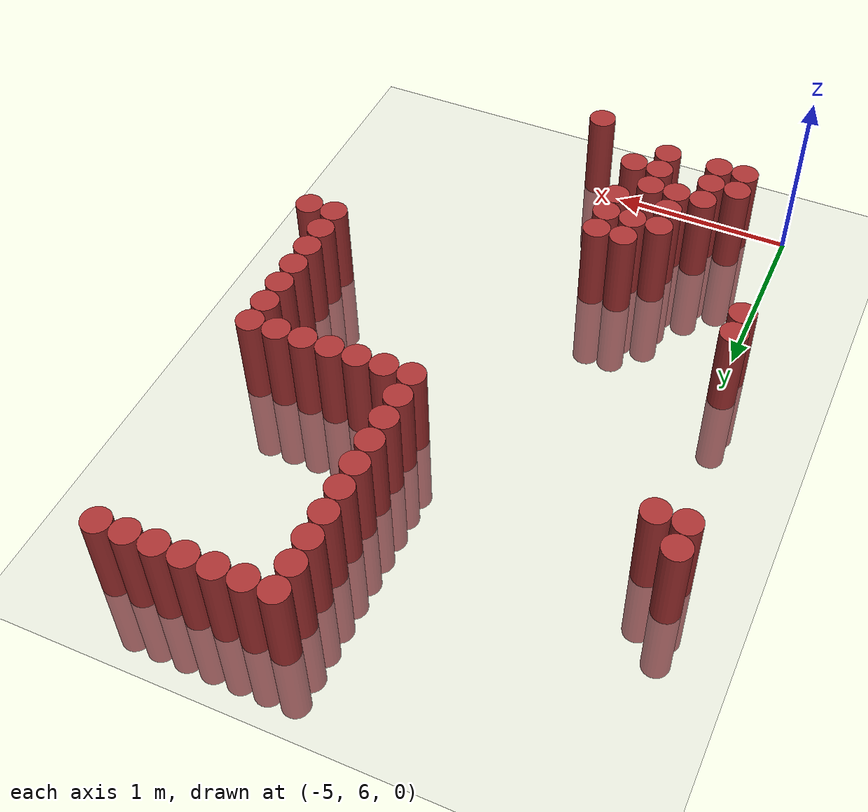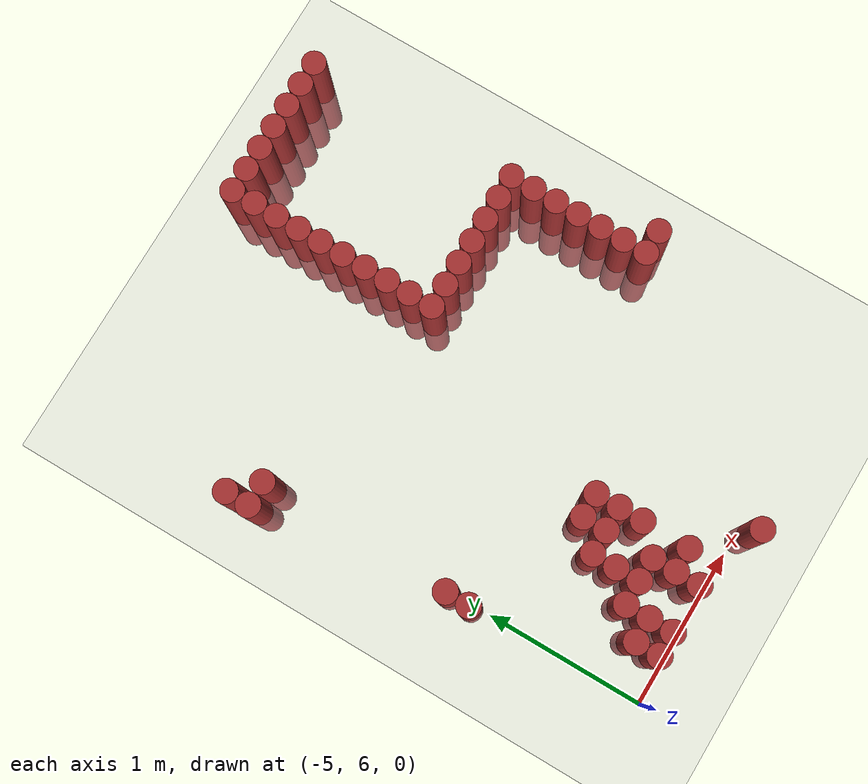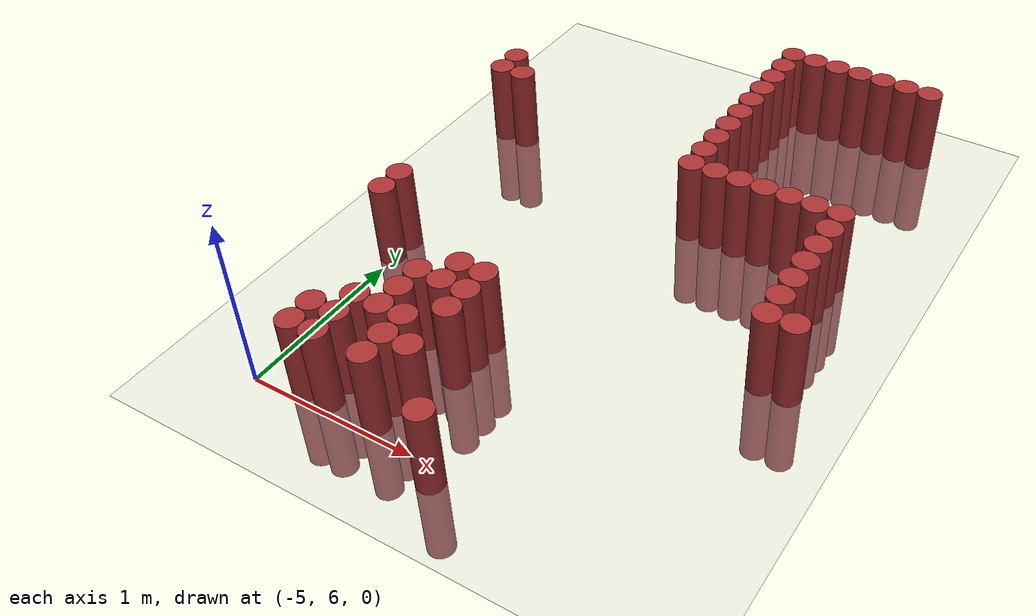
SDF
<sdf version="1.6">
 <world name="default">
  <model name="ground_plane">
   <static>1</static>
   <link name="link">
    <collision name="collision">
     <geometry><plane><normal>0 0 1</normal><size>100 100</size></plane></geometry>
     <surface><friction><ode><mu>100</mu><mu2>50</mu2></ode></friction></surface>
    </collision>
    <visual name="visual">
     <cast_shadows>0</cast_shadows>
     <geometry><plane><normal>0 0 1</normal><size>100 100</size></plane></geometry>
     <material>
      <script><uri>file://media/materials/scripts/gazebo.material</uri><name>Gazebo/Grey</name></script>
     </material>
    </visual>
   </link>
  </model>
  <model name="unit_cylinder_268">
   <static>1</static>
   <pose>-5.175000 8.475000 0.000000 0.000000 0.000000 0.000000</pose>
   <link name="link">
    <inertial>
     <mass>1</mass>
     <inertia><ixx>0.145833</ixx><ixy>0</ixy><ixz>0</ixz><iyy>0.145833</iyy><iyz>0</iyz><izz>0.125</izz></inertia>
    </inertial>
    <collision name="collision">
     <geometry><cylinder><radius>0.075000</radius><length>1</length></cylinder></geometry>
    </collision>
    <visual name="visual">
     <geometry><cylinder><radius>0.075000</radius><length>1</length></cylinder></geometry>
     <material>
      <ambient>0.648000 0.192000 0.192000 1</ambient>
      <diffuse>0.648000 0.192000 0.192000 1</diffuse>
     </material>
     <material>
      <script><name>Gazebo/Grey</name><uri>file://media/materials/scripts/gazebo.material</uri></script>
     </material>
    </visual>
   </link>
  </model>
  <model name="unit_cylinder_269">
   <static>1</static>
   <pose>-5.175000 8.625000 0.000000 0.000000 0.000000 0.000000</pose>
   <link name="link">
    <inertial>
     <mass>1</mass>
     <inertia><ixx>0.145833</ixx><ixy>0</ixy><ixz>0</ixz><iyy>0.145833</iyy><iyz>0</iyz><izz>0.125</izz></inertia>
    </inertial>
    <collision name="collision">
     <geometry><cylinder><radius>0.075000</radius><length>1</length></cylinder></geometry>
    </collision>
    <visual name="visual">
     <geometry><cylinder><radius>0.075000</radius><length>1</length></cylinder></geometry>
     <material>
      <ambient>0.648000 0.192000 0.192000 1</ambient>
      <diffuse>0.648000 0.192000 0.192000 1</diffuse>
     </material>
     <material>
      <script><name>Gazebo/Grey</name><uri>file://media/materials/scripts/gazebo.material</uri></script>
     </material>
    </visual>
   </link>
  </model>
  <model name="unit_cylinder_270">
   <static>1</static>
   <pose>-5.025000 7.125000 0.000000 0.000000 0.000000 0.000000</pose>
   <link name="link">
    <inertial>
     <mass>1</mass>
     <inertia><ixx>0.145833</ixx><ixy>0</ixy><ixz>0</ixz><iyy>0.145833</iyy><iyz>0</iyz><izz>0.125</izz></inertia>
    </inertial>
    <collision name="collision">
     <geometry><cylinder><radius>0.075000</radius><length>1</length></cylinder></geometry>
    </collision>
    <visual name="visual">
     <geometry><cylinder><radius>0.075000</radius><length>1</length></cylinder></geometry>
     <material>
      <ambient>0.648000 0.192000 0.192000 1</ambient>
      <diffuse>0.648000 0.192000 0.192000 1</diffuse>
     </material>
     <material>
      <script><name>Gazebo/Grey</name><uri>file://media/materials/scripts/gazebo.material</uri></script>
     </material>
    </visual>
   </link>
  </model>
  <model name="unit_cylinder_271">
   <static>1</static>
   <pose>-5.025000 7.275000 0.000000 0.000000 0.000000 0.000000</pose>
   <link name="link">
    <inertial>
     <mass>1</mass>
     <inertia><ixx>0.145833</ixx><ixy>0</ixy><ixz>0</ixz><iyy>0.145833</iyy><iyz>0</iyz><izz>0.125</izz></inertia>
    </inertial>
    <collision name="collision">
     <geometry><cylinder><radius>0.075000</radius><length>1</length></cylinder></geometry>
    </collision>
    <visual name="visual">
     <geometry><cylinder><radius>0.075000</radius><length>1</length></cylinder></geometry>
     <material>
      <ambient>0.648000 0.192000 0.192000 1</ambient>
      <diffuse>0.648000 0.192000 0.192000 1</diffuse>
     </material>
     <material>
      <script><name>Gazebo/Grey</name><uri>file://media/materials/scripts/gazebo.material</uri></script>
     </material>
    </visual>
   </link>
  </model>
  <model name="unit_cylinder_272">
   <static>1</static>
   <pose>-5.025000 8.475000 0.000000 0.000000 0.000000 0.000000</pose>
   <link name="link">
    <inertial>
     <mass>1</mass>
     <inertia><ixx>0.145833</ixx><ixy>0</ixy><ixz>0</ixz><iyy>0.145833</iyy><iyz>0</iyz><izz>0.125</izz></inertia>
    </inertial>
    <collision name="collision">
     <geometry><cylinder><radius>0.075000</radius><length>1</length></cylinder></geometry>
    </collision>
    <visual name="visual">
     <geometry><cylinder><radius>0.075000</radius><length>1</length></cylinder></geometry>
     <material>
      <ambient>0.648000 0.192000 0.192000 1</ambient>
      <diffuse>0.648000 0.192000 0.192000 1</diffuse>
     </material>
     <material>
      <script><name>Gazebo/Grey</name><uri>file://media/materials/scripts/gazebo.material</uri></script>
     </material>
    </visual>
   </link>
  </model>
  <model name="unit_cylinder_273">
   <static>1</static>
   <pose>-4.725000 6.075000 0.000000 0.000000 0.000000 0.000000</pose>
   <link name="link">
    <inertial>
     <mass>1</mass>
     <inertia><ixx>0.145833</ixx><ixy>0</ixy><ixz>0</ixz><iyy>0.145833</iyy><iyz>0</iyz><izz>0.125</izz></inertia>
    </inertial>
    <collision name="collision">
     <geometry><cylinder><radius>0.075000</radius><length>1</length></cylinder></geometry>
    </collision>
    <visual name="visual">
     <geometry><cylinder><radius>0.075000</radius><length>1</length></cylinder></geometry>
     <material>
      <ambient>0.648000 0.192000 0.192000 1</ambient>
      <diffuse>0.648000 0.192000 0.192000 1</diffuse>
     </material>
     <material>
      <script><name>Gazebo/Grey</name><uri>file://media/materials/scripts/gazebo.material</uri></script>
     </material>
    </visual>
   </link>
  </model>
  <model name="unit_cylinder_274">
   <static>1</static>
   <pose>-4.725000 6.225000 0.000000 0.000000 0.000000 0.000000</pose>
   <link name="link">
    <inertial>
     <mass>1</mass>
     <inertia><ixx>0.145833</ixx><ixy>0</ixy><ixz>0</ixz><iyy>0.145833</iyy><iyz>0</iyz><izz>0.125</izz></inertia>
    </inertial>
    <collision name="collision">
     <geometry><cylinder><radius>0.075000</radius><length>1</length></cylinder></geometry>
    </collision>
    <visual name="visual">
     <geometry><cylinder><radius>0.075000</radius><length>1</length></cylinder></geometry>
     <material>
      <ambient>0.648000 0.192000 0.192000 1</ambient>
      <diffuse>0.648000 0.192000 0.192000 1</diffuse>
     </material>
     <material>
      <script><name>Gazebo/Grey</name><uri>file://media/materials/scripts/gazebo.material</uri></script>
     </material>
    </visual>
   </link>
  </model>
  <model name="unit_cylinder_278">
   <static>1</static>
   <pose>-4.575000 6.075000 0.000000 0.000000 0.000000 0.000000</pose>
   <link name="link">
    <inertial>
     <mass>1</mass>
     <inertia><ixx>0.145833</ixx><ixy>0</ixy><ixz>0</ixz><iyy>0.145833</iyy><iyz>0</iyz><izz>0.125</izz></inertia>
    </inertial>
    <collision name="collision">
     <geometry><cylinder><radius>0.075000</radius><length>1</length></cylinder></geometry>
    </collision>
    <visual name="visual">
     <geometry><cylinder><radius>0.075000</radius><length>1</length></cylinder></geometry>
     <material>
      <ambient>0.648000 0.192000 0.192000 1</ambient>
      <diffuse>0.648000 0.192000 0.192000 1</diffuse>
     </material>
     <material>
      <script><name>Gazebo/Grey</name><uri>file://media/materials/scripts/gazebo.material</uri></script>
     </material>
    </visual>
   </link>
  </model>
  <model name="unit_cylinder_279">
   <static>1</static>
   <pose>-4.575000 6.225000 0.000000 0.000000 0.000000 0.000000</pose>
   <link name="link">
    <inertial>
     <mass>1</mass>
     <inertia><ixx>0.145833</ixx><ixy>0</ixy><ixz>0</ixz><iyy>0.145833</iyy><iyz>0</iyz><izz>0.125</izz></inertia>
    </inertial>
    <collision name="collision">
     <geometry><cylinder><radius>0.075000</radius><length>1</length></cylinder></geometry>
    </collision>
    <visual name="visual">
     <geometry><cylinder><radius>0.075000</radius><length>1</length></cylinder></geometry>
     <material>
      <ambient>0.648000 0.192000 0.192000 1</ambient>
      <diffuse>0.648000 0.192000 0.192000 1</diffuse>
     </material>
     <material>
      <script><name>Gazebo/Grey</name><uri>file://media/materials/scripts/gazebo.material</uri></script>
     </material>
    </visual>
   </link>
  </model>
  <model name="unit_cylinder_280">
   <static>1</static>
   <pose>-4.575000 6.375000 0.000000 0.000000 0.000000 0.000000</pose>
   <link name="link">
    <inertial>
     <mass>1</mass>
     <inertia><ixx>0.145833</ixx><ixy>0</ixy><ixz>0</ixz><iyy>0.145833</iyy><iyz>0</iyz><izz>0.125</izz></inertia>
    </inertial>
    <collision name="collision">
     <geometry><cylinder><radius>0.075000</radius><length>1</length></cylinder></geometry>
    </collision>
    <visual name="visual">
     <geometry><cylinder><radius>0.075000</radius><length>1</length></cylinder></geometry>
     <material>
      <ambient>0.648000 0.192000 0.192000 1</ambient>
      <diffuse>0.648000 0.192000 0.192000 1</diffuse>
     </material>
     <material>
      <script><name>Gazebo/Grey</name><uri>file://media/materials/scripts/gazebo.material</uri></script>
     </material>
    </visual>
   </link>
  </model>
  <model name="unit_cylinder_287">
   <static>1</static>
   <pose>-4.425000 6.375000 0.000000 0.000000 0.000000 0.000000</pose>
   <link name="link">
    <inertial>
     <mass>1</mass>
     <inertia><ixx>0.145833</ixx><ixy>0</ixy><ixz>0</ixz><iyy>0.145833</iyy><iyz>0</iyz><izz>0.125</izz></inertia>
    </inertial>
    <collision name="collision">
     <geometry><cylinder><radius>0.075000</radius><length>1</length></cylinder></geometry>
    </collision>
    <visual name="visual">
     <geometry><cylinder><radius>0.075000</radius><length>1</length></cylinder></geometry>
     <material>
      <ambient>0.648000 0.192000 0.192000 1</ambient>
      <diffuse>0.648000 0.192000 0.192000 1</diffuse>
     </material>
     <material>
      <script><name>Gazebo/Grey</name><uri>file://media/materials/scripts/gazebo.material</uri></script>
     </material>
    </visual>
   </link>
  </model>
  <model name="unit_cylinder_288">
   <static>1</static>
   <pose>-4.425000 6.525000 0.000000 0.000000 0.000000 0.000000</pose>
   <link name="link">
    <inertial>
     <mass>1</mass>
     <inertia><ixx>0.145833</ixx><ixy>0</ixy><ixz>0</ixz><iyy>0.145833</iyy><iyz>0</iyz><izz>0.125</izz></inertia>
    </inertial>
    <collision name="collision">
     <geometry><cylinder><radius>0.075000</radius><length>1</length></cylinder></geometry>
    </collision>
    <visual name="visual">
     <geometry><cylinder><radius>0.075000</radius><length>1</length></cylinder></geometry>
     <material>
      <ambient>0.648000 0.192000 0.192000 1</ambient>
      <diffuse>0.648000 0.192000 0.192000 1</diffuse>
     </material>
     <material>
      <script><name>Gazebo/Grey</name><uri>file://media/materials/scripts/gazebo.material</uri></script>
     </material>
    </visual>
   </link>
  </model>
  <model name="unit_cylinder_289">
   <static>1</static>
   <pose>-4.425000 6.675000 0.000000 0.000000 0.000000 0.000000</pose>
   <link name="link">
    <inertial>
     <mass>1</mass>
     <inertia><ixx>0.145833</ixx><ixy>0</ixy><ixz>0</ixz><iyy>0.145833</iyy><iyz>0</iyz><izz>0.125</izz></inertia>
    </inertial>
    <collision name="collision">
     <geometry><cylinder><radius>0.075000</radius><length>1</length></cylinder></geometry>
    </collision>
    <visual name="visual">
     <geometry><cylinder><radius>0.075000</radius><length>1</length></cylinder></geometry>
     <material>
      <ambient>0.648000 0.192000 0.192000 1</ambient>
      <diffuse>0.648000 0.192000 0.192000 1</diffuse>
     </material>
     <material>
      <script><name>Gazebo/Grey</name><uri>file://media/materials/scripts/gazebo.material</uri></script>
     </material>
    </visual>
   </link>
  </model>
  <model name="unit_cylinder_292">
   <static>1</static>
   <pose>-4.275000 6.075000 0.000000 0.000000 0.000000 0.000000</pose>
   <link name="link">
    <inertial>
     <mass>1</mass>
     <inertia><ixx>0.145833</ixx><ixy>0</ixy><ixz>0</ixz><iyy>0.145833</iyy><iyz>0</iyz><izz>0.125</izz></inertia>
    </inertial>
    <collision name="collision">
     <geometry><cylinder><radius>0.075000</radius><length>1</length></cylinder></geometry>
    </collision>
    <visual name="visual">
     <geometry><cylinder><radius>0.075000</radius><length>1</length></cylinder></geometry>
     <material>
      <ambient>0.648000 0.192000 0.192000 1</ambient>
      <diffuse>0.648000 0.192000 0.192000 1</diffuse>
     </material>
     <material>
      <script><name>Gazebo/Grey</name><uri>file://media/materials/scripts/gazebo.material</uri></script>
     </material>
    </visual>
   </link>
  </model>
  <model name="unit_cylinder_293">
   <static>1</static>
   <pose>-4.275000 6.225000 0.000000 0.000000 0.000000 0.000000</pose>
   <link name="link">
    <inertial>
     <mass>1</mass>
     <inertia><ixx>0.145833</ixx><ixy>0</ixy><ixz>0</ixz><iyy>0.145833</iyy><iyz>0</iyz><izz>0.125</izz></inertia>
    </inertial>
    <collision name="collision">
     <geometry><cylinder><radius>0.075000</radius><length>1</length></cylinder></geometry>
    </collision>
    <visual name="visual">
     <geometry><cylinder><radius>0.075000</radius><length>1</length></cylinder></geometry>
     <material>
      <ambient>0.648000 0.192000 0.192000 1</ambient>
      <diffuse>0.648000 0.192000 0.192000 1</diffuse>
     </material>
     <material>
      <script><name>Gazebo/Grey</name><uri>file://media/materials/scripts/gazebo.material</uri></script>
     </material>
    </visual>
   </link>
  </model>
  <model name="unit_cylinder_294">
   <static>1</static>
   <pose>-4.275000 6.375000 0.000000 0.000000 0.000000 0.000000</pose>
   <link name="link">
    <inertial>
     <mass>1</mass>
     <inertia><ixx>0.145833</ixx><ixy>0</ixy><ixz>0</ixz><iyy>0.145833</iyy><iyz>0</iyz><izz>0.125</izz></inertia>
    </inertial>
    <collision name="collision">
     <geometry><cylinder><radius>0.075000</radius><length>1</length></cylinder></geometry>
    </collision>
    <visual name="visual">
     <geometry><cylinder><radius>0.075000</radius><length>1</length></cylinder></geometry>
     <material>
      <ambient>0.648000 0.192000 0.192000 1</ambient>
      <diffuse>0.648000 0.192000 0.192000 1</diffuse>
     </material>
     <material>
      <script><name>Gazebo/Grey</name><uri>file://media/materials/scripts/gazebo.material</uri></script>
     </material>
    </visual>
   </link>
  </model>
  <model name="unit_cylinder_295">
   <static>1</static>
   <pose>-4.275000 6.675000 0.000000 0.000000 0.000000 0.000000</pose>
   <link name="link">
    <inertial>
     <mass>1</mass>
     <inertia><ixx>0.145833</ixx><ixy>0</ixy><ixz>0</ixz><iyy>0.145833</iyy><iyz>0</iyz><izz>0.125</izz></inertia>
    </inertial>
    <collision name="collision">
     <geometry><cylinder><radius>0.075000</radius><length>1</length></cylinder></geometry>
    </collision>
    <visual name="visual">
     <geometry><cylinder><radius>0.075000</radius><length>1</length></cylinder></geometry>
     <material>
      <ambient>0.648000 0.192000 0.192000 1</ambient>
      <diffuse>0.648000 0.192000 0.192000 1</diffuse>
     </material>
     <material>
      <script><name>Gazebo/Grey</name><uri>file://media/materials/scripts/gazebo.material</uri></script>
     </material>
    </visual>
   </link>
  </model>
  <model name="unit_cylinder_296">
   <static>1</static>
   <pose>-4.275000 6.825000 0.000000 0.000000 0.000000 0.000000</pose>
   <link name="link">
    <inertial>
     <mass>1</mass>
     <inertia><ixx>0.145833</ixx><ixy>0</ixy><ixz>0</ixz><iyy>0.145833</iyy><iyz>0</iyz><izz>0.125</izz></inertia>
    </inertial>
    <collision name="collision">
     <geometry><cylinder><radius>0.075000</radius><length>1</length></cylinder></geometry>
    </collision>
    <visual name="visual">
     <geometry><cylinder><radius>0.075000</radius><length>1</length></cylinder></geometry>
     <material>
      <ambient>0.648000 0.192000 0.192000 1</ambient>
      <diffuse>0.648000 0.192000 0.192000 1</diffuse>
     </material>
     <material>
      <script><name>Gazebo/Grey</name><uri>file://media/materials/scripts/gazebo.material</uri></script>
     </material>
    </visual>
   </link>
  </model>
  <model name="unit_cylinder_301">
   <static>1</static>
   <pose>-4.125000 6.225000 0.000000 0.000000 0.000000 0.000000</pose>
   <link name="link">
    <inertial>
     <mass>1</mass>
     <inertia><ixx>0.145833</ixx><ixy>0</ixy><ixz>0</ixz><iyy>0.145833</iyy><iyz>0</iyz><izz>0.125</izz></inertia>
    </inertial>
    <collision name="collision">
     <geometry><cylinder><radius>0.075000</radius><length>1</length></cylinder></geometry>
    </collision>
    <visual name="visual">
     <geometry><cylinder><radius>0.075000</radius><length>1</length></cylinder></geometry>
     <material>
      <ambient>0.648000 0.192000 0.192000 1</ambient>
      <diffuse>0.648000 0.192000 0.192000 1</diffuse>
     </material>
     <material>
      <script><name>Gazebo/Grey</name><uri>file://media/materials/scripts/gazebo.material</uri></script>
     </material>
    </visual>
   </link>
  </model>
  <model name="unit_cylinder_302">
   <static>1</static>
   <pose>-4.125000 6.525000 0.000000 0.000000 0.000000 0.000000</pose>
   <link name="link">
    <inertial>
     <mass>1</mass>
     <inertia><ixx>0.145833</ixx><ixy>0</ixy><ixz>0</ixz><iyy>0.145833</iyy><iyz>0</iyz><izz>0.125</izz></inertia>
    </inertial>
    <collision name="collision">
     <geometry><cylinder><radius>0.075000</radius><length>1</length></cylinder></geometry>
    </collision>
    <visual name="visual">
     <geometry><cylinder><radius>0.075000</radius><length>1</length></cylinder></geometry>
     <material>
      <ambient>0.648000 0.192000 0.192000 1</ambient>
      <diffuse>0.648000 0.192000 0.192000 1</diffuse>
     </material>
     <material>
      <script><name>Gazebo/Grey</name><uri>file://media/materials/scripts/gazebo.material</uri></script>
     </material>
    </visual>
   </link>
  </model>
  <model name="unit_cylinder_303">
   <static>1</static>
   <pose>-4.125000 6.675000 0.000000 0.000000 0.000000 0.000000</pose>
   <link name="link">
    <inertial>
     <mass>1</mass>
     <inertia><ixx>0.145833</ixx><ixy>0</ixy><ixz>0</ixz><iyy>0.145833</iyy><iyz>0</iyz><izz>0.125</izz></inertia>
    </inertial>
    <collision name="collision">
     <geometry><cylinder><radius>0.075000</radius><length>1</length></cylinder></geometry>
    </collision>
    <visual name="visual">
     <geometry><cylinder><radius>0.075000</radius><length>1</length></cylinder></geometry>
     <material>
      <ambient>0.648000 0.192000 0.192000 1</ambient>
      <diffuse>0.648000 0.192000 0.192000 1</diffuse>
     </material>
     <material>
      <script><name>Gazebo/Grey</name><uri>file://media/materials/scripts/gazebo.material</uri></script>
     </material>
    </visual>
   </link>
  </model>
  <model name="unit_cylinder_304">
   <static>1</static>
   <pose>-4.125000 6.825000 0.000000 0.000000 0.000000 0.000000</pose>
   <link name="link">
    <inertial>
     <mass>1</mass>
     <inertia><ixx>0.145833</ixx><ixy>0</ixy><ixz>0</ixz><iyy>0.145833</iyy><iyz>0</iyz><izz>0.125</izz></inertia>
    </inertial>
    <collision name="collision">
     <geometry><cylinder><radius>0.075000</radius><length>1</length></cylinder></geometry>
    </collision>
    <visual name="visual">
     <geometry><cylinder><radius>0.075000</radius><length>1</length></cylinder></geometry>
     <material>
      <ambient>0.648000 0.192000 0.192000 1</ambient>
      <diffuse>0.648000 0.192000 0.192000 1</diffuse>
     </material>
     <material>
      <script><name>Gazebo/Grey</name><uri>file://media/materials/scripts/gazebo.material</uri></script>
     </material>
    </visual>
   </link>
  </model>
  <model name="unit_cylinder_311">
   <static>1</static>
   <pose>-3.825000 5.925000 0.000000 0.000000 0.000000 0.000000</pose>
   <link name="link">
    <inertial>
     <mass>1</mass>
     <inertia><ixx>0.145833</ixx><ixy>0</ixy><ixz>0</ixz><iyy>0.145833</iyy><iyz>0</iyz><izz>0.125</izz></inertia>
    </inertial>
    <collision name="collision">
     <geometry><cylinder><radius>0.075000</radius><length>1</length></cylinder></geometry>
    </collision>
    <visual name="visual">
     <geometry><cylinder><radius>0.075000</radius><length>1</length></cylinder></geometry>
     <material>
      <ambient>0.648000 0.192000 0.192000 1</ambient>
      <diffuse>0.648000 0.192000 0.192000 1</diffuse>
     </material>
     <material>
      <script><name>Gazebo/Grey</name><uri>file://media/materials/scripts/gazebo.material</uri></script>
     </material>
    </visual>
   </link>
  </model>
  <model name="unit_cylinder_314">
   <static>1</static>
   <pose>-3.675000 8.175000 0.000000 0.000000 0.000000 0.000000</pose>
   <link name="link">
    <inertial>
     <mass>1</mass>
     <inertia><ixx>0.145833</ixx><ixy>0</ixy><ixz>0</ixz><iyy>0.145833</iyy><iyz>0</iyz><izz>0.125</izz></inertia>
    </inertial>
    <collision name="collision">
     <geometry><cylinder><radius>0.075000</radius><length>1</length></cylinder></geometry>
    </collision>
    <visual name="visual">
     <geometry><cylinder><radius>0.075000</radius><length>1</length></cylinder></geometry>
     <material>
      <ambient>0.648000 0.192000 0.192000 1</ambient>
      <diffuse>0.648000 0.192000 0.192000 1</diffuse>
     </material>
     <material>
      <script><name>Gazebo/Grey</name><uri>file://media/materials/scripts/gazebo.material</uri></script>
     </material>
    </visual>
   </link>
  </model>
  <model name="unit_cylinder_315">
   <static>1</static>
   <pose>-3.675000 8.325000 0.000000 0.000000 0.000000 0.000000</pose>
   <link name="link">
    <inertial>
     <mass>1</mass>
     <inertia><ixx>0.145833</ixx><ixy>0</ixy><ixz>0</ixz><iyy>0.145833</iyy><iyz>0</iyz><izz>0.125</izz></inertia>
    </inertial>
    <collision name="collision">
     <geometry><cylinder><radius>0.075000</radius><length>1</length></cylinder></geometry>
    </collision>
    <visual name="visual">
     <geometry><cylinder><radius>0.075000</radius><length>1</length></cylinder></geometry>
     <material>
      <ambient>0.648000 0.192000 0.192000 1</ambient>
      <diffuse>0.648000 0.192000 0.192000 1</diffuse>
     </material>
     <material>
      <script><name>Gazebo/Grey</name><uri>file://media/materials/scripts/gazebo.material</uri></script>
     </material>
    </visual>
   </link>
  </model>
  <model name="unit_cylinder_316">
   <static>1</static>
   <pose>-3.675000 8.475000 0.000000 0.000000 0.000000 0.000000</pose>
   <link name="link">
    <inertial>
     <mass>1</mass>
     <inertia><ixx>0.145833</ixx><ixy>0</ixy><ixz>0</ixz><iyy>0.145833</iyy><iyz>0</iyz><izz>0.125</izz></inertia>
    </inertial>
    <collision name="collision">
     <geometry><cylinder><radius>0.075000</radius><length>1</length></cylinder></geometry>
    </collision>
    <visual name="visual">
     <geometry><cylinder><radius>0.075000</radius><length>1</length></cylinder></geometry>
     <material>
      <ambient>0.648000 0.192000 0.192000 1</ambient>
      <diffuse>0.648000 0.192000 0.192000 1</diffuse>
     </material>
     <material>
      <script><name>Gazebo/Grey</name><uri>file://media/materials/scripts/gazebo.material</uri></script>
     </material>
    </visual>
   </link>
  </model>
  <model name="unit_cylinder_317">
   <static>1</static>
   <pose>-3.675000 8.625000 0.000000 0.000000 0.000000 0.000000</pose>
   <link name="link">
    <inertial>
     <mass>1</mass>
     <inertia><ixx>0.145833</ixx><ixy>0</ixy><ixz>0</ixz><iyy>0.145833</iyy><iyz>0</iyz><izz>0.125</izz></inertia>
    </inertial>
    <collision name="collision">
     <geometry><cylinder><radius>0.075000</radius><length>1</length></cylinder></geometry>
    </collision>
    <visual name="visual">
     <geometry><cylinder><radius>0.075000</radius><length>1</length></cylinder></geometry>
     <material>
      <ambient>0.648000 0.192000 0.192000 1</ambient>
      <diffuse>0.648000 0.192000 0.192000 1</diffuse>
     </material>
     <material>
      <script><name>Gazebo/Grey</name><uri>file://media/materials/scripts/gazebo.material</uri></script>
     </material>
    </visual>
   </link>
  </model>
  <model name="unit_cylinder_318">
   <static>1</static>
   <pose>-3.675000 8.775000 0.000000 0.000000 0.000000 0.000000</pose>
   <link name="link">
    <inertial>
     <mass>1</mass>
     <inertia><ixx>0.145833</ixx><ixy>0</ixy><ixz>0</ixz><iyy>0.145833</iyy><iyz>0</iyz><izz>0.125</izz></inertia>
    </inertial>
    <collision name="collision">
     <geometry><cylinder><radius>0.075000</radius><length>1</length></cylinder></geometry>
    </collision>
    <visual name="visual">
     <geometry><cylinder><radius>0.075000</radius><length>1</length></cylinder></geometry>
     <material>
      <ambient>0.648000 0.192000 0.192000 1</ambient>
      <diffuse>0.648000 0.192000 0.192000 1</diffuse>
     </material>
     <material>
      <script><name>Gazebo/Grey</name><uri>file://media/materials/scripts/gazebo.material</uri></script>
     </material>
    </visual>
   </link>
  </model>
  <model name="unit_cylinder_319">
   <static>1</static>
   <pose>-3.675000 8.925000 0.000000 0.000000 0.000000 0.000000</pose>
   <link name="link">
    <inertial>
     <mass>1</mass>
     <inertia><ixx>0.145833</ixx><ixy>0</ixy><ixz>0</ixz><iyy>0.145833</iyy><iyz>0</iyz><izz>0.125</izz></inertia>
    </inertial>
    <collision name="collision">
     <geometry><cylinder><radius>0.075000</radius><length>1</length></cylinder></geometry>
    </collision>
    <visual name="visual">
     <geometry><cylinder><radius>0.075000</radius><length>1</length></cylinder></geometry>
     <material>
      <ambient>0.648000 0.192000 0.192000 1</ambient>
      <diffuse>0.648000 0.192000 0.192000 1</diffuse>
     </material>
     <material>
      <script><name>Gazebo/Grey</name><uri>file://media/materials/scripts/gazebo.material</uri></script>
     </material>
    </visual>
   </link>
  </model>
  <model name="unit_cylinder_320">
   <static>1</static>
   <pose>-3.675000 9.075000 0.000000 0.000000 0.000000 0.000000</pose>
   <link name="link">
    <inertial>
     <mass>1</mass>
     <inertia><ixx>0.145833</ixx><ixy>0</ixy><ixz>0</ixz><iyy>0.145833</iyy><iyz>0</iyz><izz>0.125</izz></inertia>
    </inertial>
    <collision name="collision">
     <geometry><cylinder><radius>0.075000</radius><length>1</length></cylinder></geometry>
    </collision>
    <visual name="visual">
     <geometry><cylinder><radius>0.075000</radius><length>1</length></cylinder></geometry>
     <material>
      <ambient>0.648000 0.192000 0.192000 1</ambient>
      <diffuse>0.648000 0.192000 0.192000 1</diffuse>
     </material>
     <material>
      <script><name>Gazebo/Grey</name><uri>file://media/materials/scripts/gazebo.material</uri></script>
     </material>
    </visual>
   </link>
  </model>
  <model name="unit_cylinder_321">
   <static>1</static>
   <pose>-3.675000 9.225000 0.000000 0.000000 0.000000 0.000000</pose>
   <link name="link">
    <inertial>
     <mass>1</mass>
     <inertia><ixx>0.145833</ixx><ixy>0</ixy><ixz>0</ixz><iyy>0.145833</iyy><iyz>0</iyz><izz>0.125</izz></inertia>
    </inertial>
    <collision name="collision">
     <geometry><cylinder><radius>0.075000</radius><length>1</length></cylinder></geometry>
    </collision>
    <visual name="visual">
     <geometry><cylinder><radius>0.075000</radius><length>1</length></cylinder></geometry>
     <material>
      <ambient>0.648000 0.192000 0.192000 1</ambient>
      <diffuse>0.648000 0.192000 0.192000 1</diffuse>
     </material>
     <material>
      <script><name>Gazebo/Grey</name><uri>file://media/materials/scripts/gazebo.material</uri></script>
     </material>
    </visual>
   </link>
  </model>
  <model name="unit_cylinder_322">
   <static>1</static>
   <pose>-3.675000 9.375000 0.000000 0.000000 0.000000 0.000000</pose>
   <link name="link">
    <inertial>
     <mass>1</mass>
     <inertia><ixx>0.145833</ixx><ixy>0</ixy><ixz>0</ixz><iyy>0.145833</iyy><iyz>0</iyz><izz>0.125</izz></inertia>
    </inertial>
    <collision name="collision">
     <geometry><cylinder><radius>0.075000</radius><length>1</length></cylinder></geometry>
    </collision>
    <visual name="visual">
     <geometry><cylinder><radius>0.075000</radius><length>1</length></cylinder></geometry>
     <material>
      <ambient>0.648000 0.192000 0.192000 1</ambient>
      <diffuse>0.648000 0.192000 0.192000 1</diffuse>
     </material>
     <material>
      <script><name>Gazebo/Grey</name><uri>file://media/materials/scripts/gazebo.material</uri></script>
     </material>
    </visual>
   </link>
  </model>
  <model name="unit_cylinder_323">
   <static>1</static>
   <pose>-3.675000 9.525000 0.000000 0.000000 0.000000 0.000000</pose>
   <link name="link">
    <inertial>
     <mass>1</mass>
     <inertia><ixx>0.145833</ixx><ixy>0</ixy><ixz>0</ixz><iyy>0.145833</iyy><iyz>0</iyz><izz>0.125</izz></inertia>
    </inertial>
    <collision name="collision">
     <geometry><cylinder><radius>0.075000</radius><length>1</length></cylinder></geometry>
    </collision>
    <visual name="visual">
     <geometry><cylinder><radius>0.075000</radius><length>1</length></cylinder></geometry>
     <material>
      <ambient>0.648000 0.192000 0.192000 1</ambient>
      <diffuse>0.648000 0.192000 0.192000 1</diffuse>
     </material>
     <material>
      <script><name>Gazebo/Grey</name><uri>file://media/materials/scripts/gazebo.material</uri></script>
     </material>
    </visual>
   </link>
  </model>
  <model name="unit_cylinder_324">
   <static>1</static>
   <pose>-3.525000 8.175000 0.000000 0.000000 0.000000 0.000000</pose>
   <link name="link">
    <inertial>
     <mass>1</mass>
     <inertia><ixx>0.145833</ixx><ixy>0</ixy><ixz>0</ixz><iyy>0.145833</iyy><iyz>0</iyz><izz>0.125</izz></inertia>
    </inertial>
    <collision name="collision">
     <geometry><cylinder><radius>0.075000</radius><length>1</length></cylinder></geometry>
    </collision>
    <visual name="visual">
     <geometry><cylinder><radius>0.075000</radius><length>1</length></cylinder></geometry>
     <material>
      <ambient>0.648000 0.192000 0.192000 1</ambient>
      <diffuse>0.648000 0.192000 0.192000 1</diffuse>
     </material>
     <material>
      <script><name>Gazebo/Grey</name><uri>file://media/materials/scripts/gazebo.material</uri></script>
     </material>
    </visual>
   </link>
  </model>
  <model name="unit_cylinder_325">
   <static>1</static>
   <pose>-3.525000 9.525000 0.000000 0.000000 0.000000 0.000000</pose>
   <link name="link">
    <inertial>
     <mass>1</mass>
     <inertia><ixx>0.145833</ixx><ixy>0</ixy><ixz>0</ixz><iyy>0.145833</iyy><iyz>0</iyz><izz>0.125</izz></inertia>
    </inertial>
    <collision name="collision">
     <geometry><cylinder><radius>0.075000</radius><length>1</length></cylinder></geometry>
    </collision>
    <visual name="visual">
     <geometry><cylinder><radius>0.075000</radius><length>1</length></cylinder></geometry>
     <material>
      <ambient>0.648000 0.192000 0.192000 1</ambient>
      <diffuse>0.648000 0.192000 0.192000 1</diffuse>
     </material>
     <material>
      <script><name>Gazebo/Grey</name><uri>file://media/materials/scripts/gazebo.material</uri></script>
     </material>
    </visual>
   </link>
  </model>
  <model name="unit_cylinder_326">
   <static>1</static>
   <pose>-3.375000 8.175000 0.000000 0.000000 0.000000 0.000000</pose>
   <link name="link">
    <inertial>
     <mass>1</mass>
     <inertia><ixx>0.145833</ixx><ixy>0</ixy><ixz>0</ixz><iyy>0.145833</iyy><iyz>0</iyz><izz>0.125</izz></inertia>
    </inertial>
    <collision name="collision">
     <geometry><cylinder><radius>0.075000</radius><length>1</length></cylinder></geometry>
    </collision>
    <visual name="visual">
     <geometry><cylinder><radius>0.075000</radius><length>1</length></cylinder></geometry>
     <material>
      <ambient>0.648000 0.192000 0.192000 1</ambient>
      <diffuse>0.648000 0.192000 0.192000 1</diffuse>
     </material>
     <material>
      <script><name>Gazebo/Grey</name><uri>file://media/materials/scripts/gazebo.material</uri></script>
     </material>
    </visual>
   </link>
  </model>
  <model name="unit_cylinder_327">
   <static>1</static>
   <pose>-3.375000 9.525000 0.000000 0.000000 0.000000 0.000000</pose>
   <link name="link">
    <inertial>
     <mass>1</mass>
     <inertia><ixx>0.145833</ixx><ixy>0</ixy><ixz>0</ixz><iyy>0.145833</iyy><iyz>0</iyz><izz>0.125</izz></inertia>
    </inertial>
    <collision name="collision">
     <geometry><cylinder><radius>0.075000</radius><length>1</length></cylinder></geometry>
    </collision>
    <visual name="visual">
     <geometry><cylinder><radius>0.075000</radius><length>1</length></cylinder></geometry>
     <material>
      <ambient>0.648000 0.192000 0.192000 1</ambient>
      <diffuse>0.648000 0.192000 0.192000 1</diffuse>
     </material>
     <material>
      <script><name>Gazebo/Grey</name><uri>file://media/materials/scripts/gazebo.material</uri></script>
     </material>
    </visual>
   </link>
  </model>
  <model name="unit_cylinder_328">
   <static>1</static>
   <pose>-3.225000 8.175000 0.000000 0.000000 0.000000 0.000000</pose>
   <link name="link">
    <inertial>
     <mass>1</mass>
     <inertia><ixx>0.145833</ixx><ixy>0</ixy><ixz>0</ixz><iyy>0.145833</iyy><iyz>0</iyz><izz>0.125</izz></inertia>
    </inertial>
    <collision name="collision">
     <geometry><cylinder><radius>0.075000</radius><length>1</length></cylinder></geometry>
    </collision>
    <visual name="visual">
     <geometry><cylinder><radius>0.075000</radius><length>1</length></cylinder></geometry>
     <material>
      <ambient>0.648000 0.192000 0.192000 1</ambient>
      <diffuse>0.648000 0.192000 0.192000 1</diffuse>
     </material>
     <material>
      <script><name>Gazebo/Grey</name><uri>file://media/materials/scripts/gazebo.material</uri></script>
     </material>
    </visual>
   </link>
  </model>
  <model name="unit_cylinder_329">
   <static>1</static>
   <pose>-3.225000 9.525000 0.000000 0.000000 0.000000 0.000000</pose>
   <link name="link">
    <inertial>
     <mass>1</mass>
     <inertia><ixx>0.145833</ixx><ixy>0</ixy><ixz>0</ixz><iyy>0.145833</iyy><iyz>0</iyz><izz>0.125</izz></inertia>
    </inertial>
    <collision name="collision">
     <geometry><cylinder><radius>0.075000</radius><length>1</length></cylinder></geometry>
    </collision>
    <visual name="visual">
     <geometry><cylinder><radius>0.075000</radius><length>1</length></cylinder></geometry>
     <material>
      <ambient>0.648000 0.192000 0.192000 1</ambient>
      <diffuse>0.648000 0.192000 0.192000 1</diffuse>
     </material>
     <material>
      <script><name>Gazebo/Grey</name><uri>file://media/materials/scripts/gazebo.material</uri></script>
     </material>
    </visual>
   </link>
  </model>
  <model name="unit_cylinder_330">
   <static>1</static>
   <pose>-3.075000 8.175000 0.000000 0.000000 0.000000 0.000000</pose>
   <link name="link">
    <inertial>
     <mass>1</mass>
     <inertia><ixx>0.145833</ixx><ixy>0</ixy><ixz>0</ixz><iyy>0.145833</iyy><iyz>0</iyz><izz>0.125</izz></inertia>
    </inertial>
    <collision name="collision">
     <geometry><cylinder><radius>0.075000</radius><length>1</length></cylinder></geometry>
    </collision>
    <visual name="visual">
     <geometry><cylinder><radius>0.075000</radius><length>1</length></cylinder></geometry>
     <material>
      <ambient>0.648000 0.192000 0.192000 1</ambient>
      <diffuse>0.648000 0.192000 0.192000 1</diffuse>
     </material>
     <material>
      <script><name>Gazebo/Grey</name><uri>file://media/materials/scripts/gazebo.material</uri></script>
     </material>
    </visual>
   </link>
  </model>
  <model name="unit_cylinder_331">
   <static>1</static>
   <pose>-3.075000 9.525000 0.000000 0.000000 0.000000 0.000000</pose>
   <link name="link">
    <inertial>
     <mass>1</mass>
     <inertia><ixx>0.145833</ixx><ixy>0</ixy><ixz>0</ixz><iyy>0.145833</iyy><iyz>0</iyz><izz>0.125</izz></inertia>
    </inertial>
    <collision name="collision">
     <geometry><cylinder><radius>0.075000</radius><length>1</length></cylinder></geometry>
    </collision>
    <visual name="visual">
     <geometry><cylinder><radius>0.075000</radius><length>1</length></cylinder></geometry>
     <material>
      <ambient>0.648000 0.192000 0.192000 1</ambient>
      <diffuse>0.648000 0.192000 0.192000 1</diffuse>
     </material>
     <material>
      <script><name>Gazebo/Grey</name><uri>file://media/materials/scripts/gazebo.material</uri></script>
     </material>
    </visual>
   </link>
  </model>
  <model name="unit_cylinder_332">
   <static>1</static>
   <pose>-2.925000 8.175000 0.000000 0.000000 0.000000 0.000000</pose>
   <link name="link">
    <inertial>
     <mass>1</mass>
     <inertia><ixx>0.145833</ixx><ixy>0</ixy><ixz>0</ixz><iyy>0.145833</iyy><iyz>0</iyz><izz>0.125</izz></inertia>
    </inertial>
    <collision name="collision">
     <geometry><cylinder><radius>0.075000</radius><length>1</length></cylinder></geometry>
    </collision>
    <visual name="visual">
     <geometry><cylinder><radius>0.075000</radius><length>1</length></cylinder></geometry>
     <material>
      <ambient>0.648000 0.192000 0.192000 1</ambient>
      <diffuse>0.648000 0.192000 0.192000 1</diffuse>
     </material>
     <material>
      <script><name>Gazebo/Grey</name><uri>file://media/materials/scripts/gazebo.material</uri></script>
     </material>
    </visual>
   </link>
  </model>
  <model name="unit_cylinder_333">
   <static>1</static>
   <pose>-2.925000 9.525000 0.000000 0.000000 0.000000 0.000000</pose>
   <link name="link">
    <inertial>
     <mass>1</mass>
     <inertia><ixx>0.145833</ixx><ixy>0</ixy><ixz>0</ixz><iyy>0.145833</iyy><iyz>0</iyz><izz>0.125</izz></inertia>
    </inertial>
    <collision name="collision">
     <geometry><cylinder><radius>0.075000</radius><length>1</length></cylinder></geometry>
    </collision>
    <visual name="visual">
     <geometry><cylinder><radius>0.075000</radius><length>1</length></cylinder></geometry>
     <material>
      <ambient>0.648000 0.192000 0.192000 1</ambient>
      <diffuse>0.648000 0.192000 0.192000 1</diffuse>
     </material>
     <material>
      <script><name>Gazebo/Grey</name><uri>file://media/materials/scripts/gazebo.material</uri></script>
     </material>
    </visual>
   </link>
  </model>
  <model name="unit_cylinder_334">
   <static>1</static>
   <pose>-2.775000 7.275000 0.000000 0.000000 0.000000 0.000000</pose>
   <link name="link">
    <inertial>
     <mass>1</mass>
     <inertia><ixx>0.145833</ixx><ixy>0</ixy><ixz>0</ixz><iyy>0.145833</iyy><iyz>0</iyz><izz>0.125</izz></inertia>
    </inertial>
    <collision name="collision">
     <geometry><cylinder><radius>0.075000</radius><length>1</length></cylinder></geometry>
    </collision>
    <visual name="visual">
     <geometry><cylinder><radius>0.075000</radius><length>1</length></cylinder></geometry>
     <material>
      <ambient>0.648000 0.192000 0.192000 1</ambient>
      <diffuse>0.648000 0.192000 0.192000 1</diffuse>
     </material>
     <material>
      <script><name>Gazebo/Grey</name><uri>file://media/materials/scripts/gazebo.material</uri></script>
     </material>
    </visual>
   </link>
  </model>
  <model name="unit_cylinder_335">
   <static>1</static>
   <pose>-2.775000 7.425000 0.000000 0.000000 0.000000 0.000000</pose>
   <link name="link">
    <inertial>
     <mass>1</mass>
     <inertia><ixx>0.145833</ixx><ixy>0</ixy><ixz>0</ixz><iyy>0.145833</iyy><iyz>0</iyz><izz>0.125</izz></inertia>
    </inertial>
    <collision name="collision">
     <geometry><cylinder><radius>0.075000</radius><length>1</length></cylinder></geometry>
    </collision>
    <visual name="visual">
     <geometry><cylinder><radius>0.075000</radius><length>1</length></cylinder></geometry>
     <material>
      <ambient>0.648000 0.192000 0.192000 1</ambient>
      <diffuse>0.648000 0.192000 0.192000 1</diffuse>
     </material>
     <material>
      <script><name>Gazebo/Grey</name><uri>file://media/materials/scripts/gazebo.material</uri></script>
     </material>
    </visual>
   </link>
  </model>
  <model name="unit_cylinder_336">
   <static>1</static>
   <pose>-2.775000 7.575000 0.000000 0.000000 0.000000 0.000000</pose>
   <link name="link">
    <inertial>
     <mass>1</mass>
     <inertia><ixx>0.145833</ixx><ixy>0</ixy><ixz>0</ixz><iyy>0.145833</iyy><iyz>0</iyz><izz>0.125</izz></inertia>
    </inertial>
    <collision name="collision">
     <geometry><cylinder><radius>0.075000</radius><length>1</length></cylinder></geometry>
    </collision>
    <visual name="visual">
     <geometry><cylinder><radius>0.075000</radius><length>1</length></cylinder></geometry>
     <material>
      <ambient>0.648000 0.192000 0.192000 1</ambient>
      <diffuse>0.648000 0.192000 0.192000 1</diffuse>
     </material>
     <material>
      <script><name>Gazebo/Grey</name><uri>file://media/materials/scripts/gazebo.material</uri></script>
     </material>
    </visual>
   </link>
  </model>
  <model name="unit_cylinder_337">
   <static>1</static>
   <pose>-2.775000 7.725000 0.000000 0.000000 0.000000 0.000000</pose>
   <link name="link">
    <inertial>
     <mass>1</mass>
     <inertia><ixx>0.145833</ixx><ixy>0</ixy><ixz>0</ixz><iyy>0.145833</iyy><iyz>0</iyz><izz>0.125</izz></inertia>
    </inertial>
    <collision name="collision">
     <geometry><cylinder><radius>0.075000</radius><length>1</length></cylinder></geometry>
    </collision>
    <visual name="visual">
     <geometry><cylinder><radius>0.075000</radius><length>1</length></cylinder></geometry>
     <material>
      <ambient>0.648000 0.192000 0.192000 1</ambient>
      <diffuse>0.648000 0.192000 0.192000 1</diffuse>
     </material>
     <material>
      <script><name>Gazebo/Grey</name><uri>file://media/materials/scripts/gazebo.material</uri></script>
     </material>
    </visual>
   </link>
  </model>
  <model name="unit_cylinder_338">
   <static>1</static>
   <pose>-2.775000 7.875000 0.000000 0.000000 0.000000 0.000000</pose>
   <link name="link">
    <inertial>
     <mass>1</mass>
     <inertia><ixx>0.145833</ixx><ixy>0</ixy><ixz>0</ixz><iyy>0.145833</iyy><iyz>0</iyz><izz>0.125</izz></inertia>
    </inertial>
    <collision name="collision">
     <geometry><cylinder><radius>0.075000</radius><length>1</length></cylinder></geometry>
    </collision>
    <visual name="visual">
     <geometry><cylinder><radius>0.075000</radius><length>1</length></cylinder></geometry>
     <material>
      <ambient>0.648000 0.192000 0.192000 1</ambient>
      <diffuse>0.648000 0.192000 0.192000 1</diffuse>
     </material>
     <material>
      <script><name>Gazebo/Grey</name><uri>file://media/materials/scripts/gazebo.material</uri></script>
     </material>
    </visual>
   </link>
  </model>
  <model name="unit_cylinder_339">
   <static>1</static>
   <pose>-2.775000 8.025000 0.000000 0.000000 0.000000 0.000000</pose>
   <link name="link">
    <inertial>
     <mass>1</mass>
     <inertia><ixx>0.145833</ixx><ixy>0</ixy><ixz>0</ixz><iyy>0.145833</iyy><iyz>0</iyz><izz>0.125</izz></inertia>
    </inertial>
    <collision name="collision">
     <geometry><cylinder><radius>0.075000</radius><length>1</length></cylinder></geometry>
    </collision>
    <visual name="visual">
     <geometry><cylinder><radius>0.075000</radius><length>1</length></cylinder></geometry>
     <material>
      <ambient>0.648000 0.192000 0.192000 1</ambient>
      <diffuse>0.648000 0.192000 0.192000 1</diffuse>
     </material>
     <material>
      <script><name>Gazebo/Grey</name><uri>file://media/materials/scripts/gazebo.material</uri></script>
     </material>
    </visual>
   </link>
  </model>
  <model name="unit_cylinder_340">
   <static>1</static>
   <pose>-2.775000 8.175000 0.000000 0.000000 0.000000 0.000000</pose>
   <link name="link">
    <inertial>
     <mass>1</mass>
     <inertia><ixx>0.145833</ixx><ixy>0</ixy><ixz>0</ixz><iyy>0.145833</iyy><iyz>0</iyz><izz>0.125</izz></inertia>
    </inertial>
    <collision name="collision">
     <geometry><cylinder><radius>0.075000</radius><length>1</length></cylinder></geometry>
    </collision>
    <visual name="visual">
     <geometry><cylinder><radius>0.075000</radius><length>1</length></cylinder></geometry>
     <material>
      <ambient>0.648000 0.192000 0.192000 1</ambient>
      <diffuse>0.648000 0.192000 0.192000 1</diffuse>
     </material>
     <material>
      <script><name>Gazebo/Grey</name><uri>file://media/materials/scripts/gazebo.material</uri></script>
     </material>
    </visual>
   </link>
  </model>
  <model name="unit_cylinder_341">
   <static>1</static>
   <pose>-2.775000 9.525000 0.000000 0.000000 0.000000 0.000000</pose>
   <link name="link">
    <inertial>
     <mass>1</mass>
     <inertia><ixx>0.145833</ixx><ixy>0</ixy><ixz>0</ixz><iyy>0.145833</iyy><iyz>0</iyz><izz>0.125</izz></inertia>
    </inertial>
    <collision name="collision">
     <geometry><cylinder><radius>0.075000</radius><length>1</length></cylinder></geometry>
    </collision>
    <visual name="visual">
     <geometry><cylinder><radius>0.075000</radius><length>1</length></cylinder></geometry>
     <material>
      <ambient>0.648000 0.192000 0.192000 1</ambient>
      <diffuse>0.648000 0.192000 0.192000 1</diffuse>
     </material>
     <material>
      <script><name>Gazebo/Grey</name><uri>file://media/materials/scripts/gazebo.material</uri></script>
     </material>
    </visual>
   </link>
  </model>
  <model name="unit_cylinder_342">
   <static>1</static>
   <pose>-2.625000 7.275000 0.000000 0.000000 0.000000 0.000000</pose>
   <link name="link">
    <inertial>
     <mass>1</mass>
     <inertia><ixx>0.145833</ixx><ixy>0</ixy><ixz>0</ixz><iyy>0.145833</iyy><iyz>0</iyz><izz>0.125</izz></inertia>
    </inertial>
    <collision name="collision">
     <geometry><cylinder><radius>0.075000</radius><length>1</length></cylinder></geometry>
    </collision>
    <visual name="visual">
     <geometry><cylinder><radius>0.075000</radius><length>1</length></cylinder></geometry>
     <material>
      <ambient>0.648000 0.192000 0.192000 1</ambient>
      <diffuse>0.648000 0.192000 0.192000 1</diffuse>
     </material>
     <material>
      <script><name>Gazebo/Grey</name><uri>file://media/materials/scripts/gazebo.material</uri></script>
     </material>
    </visual>
   </link>
  </model>
 </world>
</sdf>
